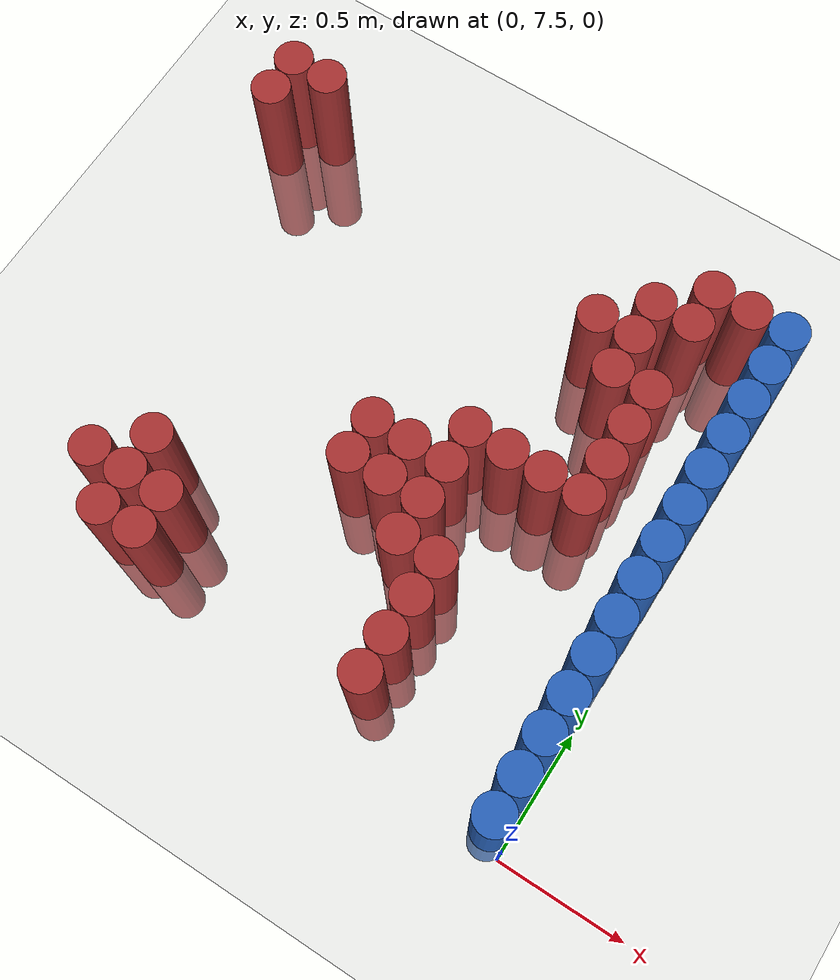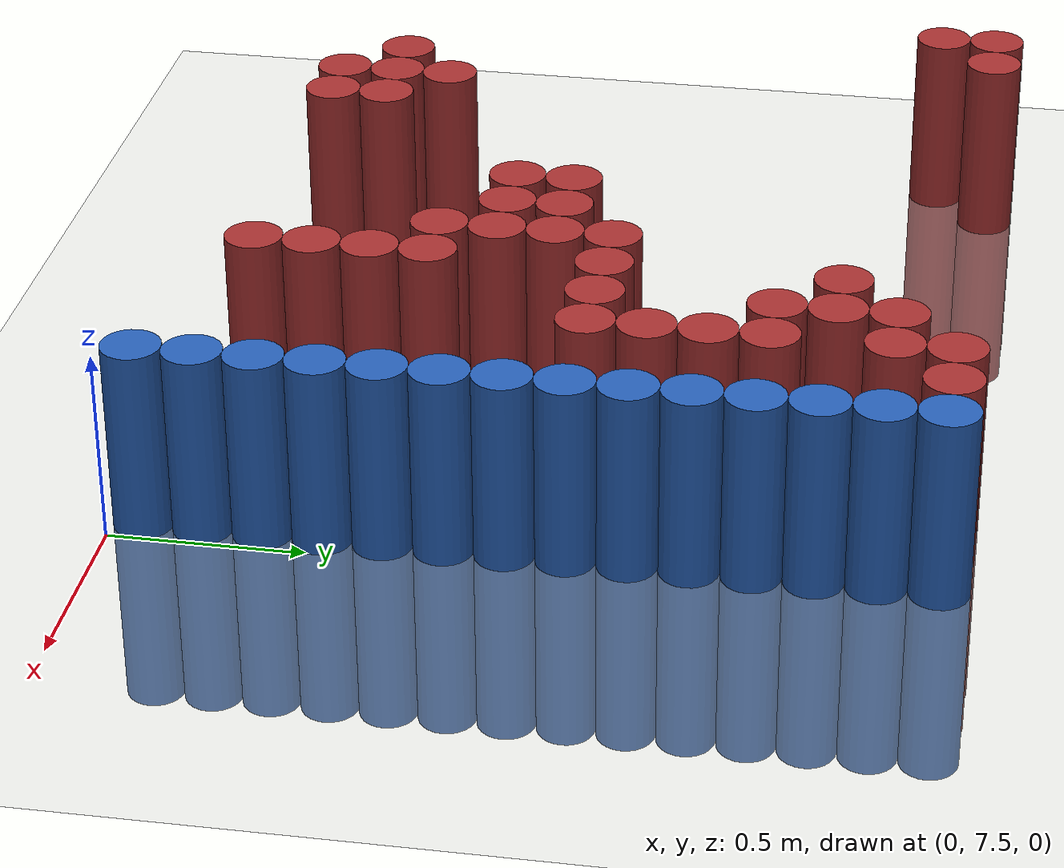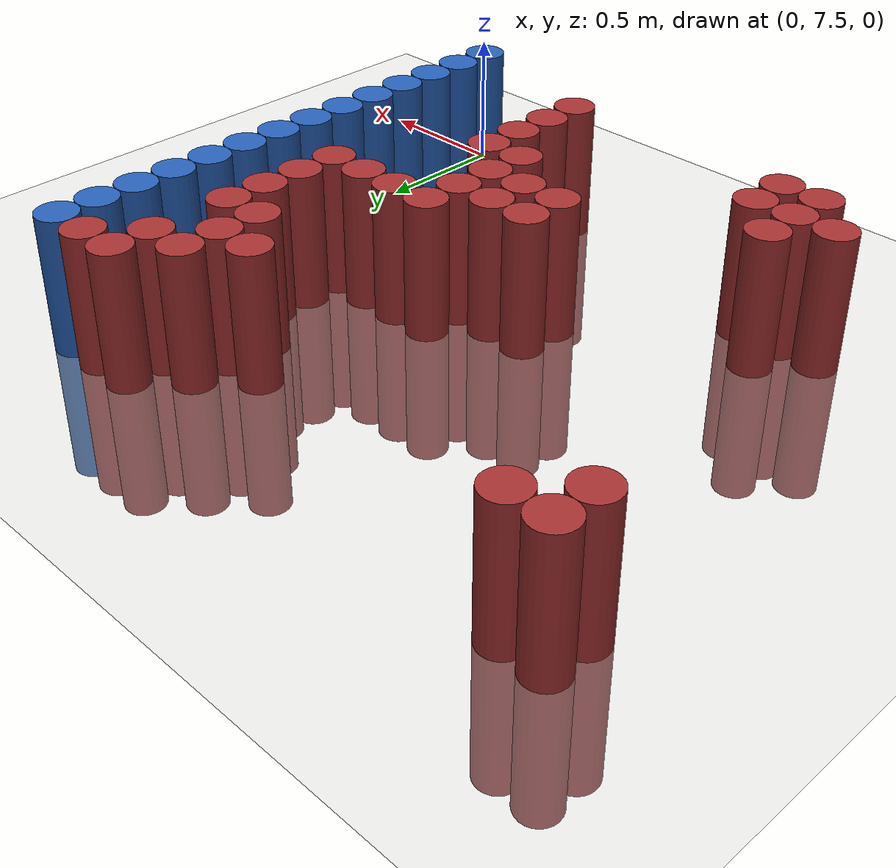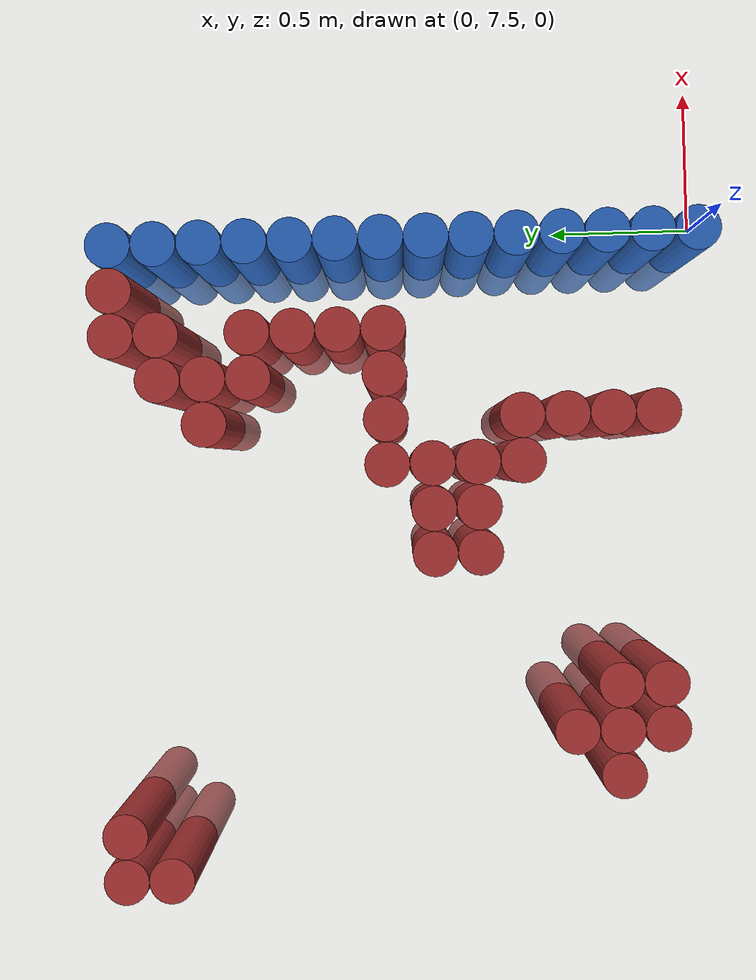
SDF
<sdf version="1.6">
 <world name="default">
  <model name="ground_plane">
   <static>1</static>
   <link name="link">
    <collision name="collision">
     <geometry><plane><normal>0 0 1</normal><size>100 100</size></plane></geometry>
     <surface><friction><ode><mu>100</mu><mu2>50</mu2></ode></friction></surface>
    </collision>
    <visual name="visual">
     <cast_shadows>0</cast_shadows>
     <geometry><plane><normal>0 0 1</normal><size>100 100</size></plane></geometry>
     <material>
      <script><uri>file://media/materials/scripts/gazebo.material</uri><name>Gazebo/Grey</name></script>
     </material>
    </visual>
   </link>
  </model>
  <model name="unit_cylinder_174">
   <static>1</static>
   <pose>-2.175000 9.375000 0.000000 0.000000 0.000000 0.000000</pose>
   <link name="link">
    <inertial>
     <mass>1</mass>
     <inertia><ixx>0.145833</ixx><ixy>0</ixy><ixz>0</ixz><iyy>0.145833</iyy><iyz>0</iyz><izz>0.125</izz></inertia>
    </inertial>
    <collision name="collision">
     <geometry><cylinder><radius>0.075000</radius><length>1</length></cylinder></geometry>
    </collision>
    <visual name="visual">
     <geometry><cylinder><radius>0.075000</radius><length>1</length></cylinder></geometry>
     <material>
      <ambient>0.648000 0.192000 0.192000 1</ambient>
      <diffuse>0.648000 0.192000 0.192000 1</diffuse>
     </material>
     <material>
      <script><name>Gazebo/Grey</name><uri>file://media/materials/scripts/gazebo.material</uri></script>
     </material>
    </visual>
   </link>
  </model>
  <model name="unit_cylinder_175">
   <static>1</static>
   <pose>-2.175000 9.525000 0.000000 0.000000 0.000000 0.000000</pose>
   <link name="link">
    <inertial>
     <mass>1</mass>
     <inertia><ixx>0.145833</ixx><ixy>0</ixy><ixz>0</ixz><iyy>0.145833</iyy><iyz>0</iyz><izz>0.125</izz></inertia>
    </inertial>
    <collision name="collision">
     <geometry><cylinder><radius>0.075000</radius><length>1</length></cylinder></geometry>
    </collision>
    <visual name="visual">
     <geometry><cylinder><radius>0.075000</radius><length>1</length></cylinder></geometry>
     <material>
      <ambient>0.648000 0.192000 0.192000 1</ambient>
      <diffuse>0.648000 0.192000 0.192000 1</diffuse>
     </material>
     <material>
      <script><name>Gazebo/Grey</name><uri>file://media/materials/scripts/gazebo.material</uri></script>
     </material>
    </visual>
   </link>
  </model>
  <model name="unit_cylinder_179">
   <static>1</static>
   <pose>-2.025000 9.525000 0.000000 0.000000 0.000000 0.000000</pose>
   <link name="link">
    <inertial>
     <mass>1</mass>
     <inertia><ixx>0.145833</ixx><ixy>0</ixy><ixz>0</ixz><iyy>0.145833</iyy><iyz>0</iyz><izz>0.125</izz></inertia>
    </inertial>
    <collision name="collision">
     <geometry><cylinder><radius>0.075000</radius><length>1</length></cylinder></geometry>
    </collision>
    <visual name="visual">
     <geometry><cylinder><radius>0.075000</radius><length>1</length></cylinder></geometry>
     <material>
      <ambient>0.648000 0.192000 0.192000 1</ambient>
      <diffuse>0.648000 0.192000 0.192000 1</diffuse>
     </material>
     <material>
      <script><name>Gazebo/Grey</name><uri>file://media/materials/scripts/gazebo.material</uri></script>
     </material>
    </visual>
   </link>
  </model>
  <model name="unit_cylinder_186">
   <static>1</static>
   <pose>-1.875000 7.875000 0.000000 0.000000 0.000000 0.000000</pose>
   <link name="link">
    <inertial>
     <mass>1</mass>
     <inertia><ixx>0.145833</ixx><ixy>0</ixy><ixz>0</ixz><iyy>0.145833</iyy><iyz>0</iyz><izz>0.125</izz></inertia>
    </inertial>
    <collision name="collision">
     <geometry><cylinder><radius>0.075000</radius><length>1</length></cylinder></geometry>
    </collision>
    <visual name="visual">
     <geometry><cylinder><radius>0.075000</radius><length>1</length></cylinder></geometry>
     <material>
      <ambient>0.648000 0.192000 0.192000 1</ambient>
      <diffuse>0.648000 0.192000 0.192000 1</diffuse>
     </material>
     <material>
      <script><name>Gazebo/Grey</name><uri>file://media/materials/scripts/gazebo.material</uri></script>
     </material>
    </visual>
   </link>
  </model>
  <model name="unit_cylinder_189">
   <static>1</static>
   <pose>-1.725000 7.725000 0.000000 0.000000 0.000000 0.000000</pose>
   <link name="link">
    <inertial>
     <mass>1</mass>
     <inertia><ixx>0.145833</ixx><ixy>0</ixy><ixz>0</ixz><iyy>0.145833</iyy><iyz>0</iyz><izz>0.125</izz></inertia>
    </inertial>
    <collision name="collision">
     <geometry><cylinder><radius>0.075000</radius><length>1</length></cylinder></geometry>
    </collision>
    <visual name="visual">
     <geometry><cylinder><radius>0.075000</radius><length>1</length></cylinder></geometry>
     <material>
      <ambient>0.648000 0.192000 0.192000 1</ambient>
      <diffuse>0.648000 0.192000 0.192000 1</diffuse>
     </material>
     <material>
      <script><name>Gazebo/Grey</name><uri>file://media/materials/scripts/gazebo.material</uri></script>
     </material>
    </visual>
   </link>
  </model>
  <model name="unit_cylinder_190">
   <static>1</static>
   <pose>-1.725000 7.875000 0.000000 0.000000 0.000000 0.000000</pose>
   <link name="link">
    <inertial>
     <mass>1</mass>
     <inertia><ixx>0.145833</ixx><ixy>0</ixy><ixz>0</ixz><iyy>0.145833</iyy><iyz>0</iyz><izz>0.125</izz></inertia>
    </inertial>
    <collision name="collision">
     <geometry><cylinder><radius>0.075000</radius><length>1</length></cylinder></geometry>
    </collision>
    <visual name="visual">
     <geometry><cylinder><radius>0.075000</radius><length>1</length></cylinder></geometry>
     <material>
      <ambient>0.648000 0.192000 0.192000 1</ambient>
      <diffuse>0.648000 0.192000 0.192000 1</diffuse>
     </material>
     <material>
      <script><name>Gazebo/Grey</name><uri>file://media/materials/scripts/gazebo.material</uri></script>
     </material>
    </visual>
   </link>
  </model>
  <model name="unit_cylinder_191">
   <static>1</static>
   <pose>-1.725000 8.025000 0.000000 0.000000 0.000000 0.000000</pose>
   <link name="link">
    <inertial>
     <mass>1</mass>
     <inertia><ixx>0.145833</ixx><ixy>0</ixy><ixz>0</ixz><iyy>0.145833</iyy><iyz>0</iyz><izz>0.125</izz></inertia>
    </inertial>
    <collision name="collision">
     <geometry><cylinder><radius>0.075000</radius><length>1</length></cylinder></geometry>
    </collision>
    <visual name="visual">
     <geometry><cylinder><radius>0.075000</radius><length>1</length></cylinder></geometry>
     <material>
      <ambient>0.648000 0.192000 0.192000 1</ambient>
      <diffuse>0.648000 0.192000 0.192000 1</diffuse>
     </material>
     <material>
      <script><name>Gazebo/Grey</name><uri>file://media/materials/scripts/gazebo.material</uri></script>
     </material>
    </visual>
   </link>
  </model>
  <model name="unit_cylinder_195">
   <static>1</static>
   <pose>-1.575000 7.725000 0.000000 0.000000 0.000000 0.000000</pose>
   <link name="link">
    <inertial>
     <mass>1</mass>
     <inertia><ixx>0.145833</ixx><ixy>0</ixy><ixz>0</ixz><iyy>0.145833</iyy><iyz>0</iyz><izz>0.125</izz></inertia>
    </inertial>
    <collision name="collision">
     <geometry><cylinder><radius>0.075000</radius><length>1</length></cylinder></geometry>
    </collision>
    <visual name="visual">
     <geometry><cylinder><radius>0.075000</radius><length>1</length></cylinder></geometry>
     <material>
      <ambient>0.648000 0.192000 0.192000 1</ambient>
      <diffuse>0.648000 0.192000 0.192000 1</diffuse>
     </material>
     <material>
      <script><name>Gazebo/Grey</name><uri>file://media/materials/scripts/gazebo.material</uri></script>
     </material>
    </visual>
   </link>
  </model>
  <model name="unit_cylinder_196">
   <static>1</static>
   <pose>-1.575000 7.875000 0.000000 0.000000 0.000000 0.000000</pose>
   <link name="link">
    <inertial>
     <mass>1</mass>
     <inertia><ixx>0.145833</ixx><ixy>0</ixy><ixz>0</ixz><iyy>0.145833</iyy><iyz>0</iyz><izz>0.125</izz></inertia>
    </inertial>
    <collision name="collision">
     <geometry><cylinder><radius>0.075000</radius><length>1</length></cylinder></geometry>
    </collision>
    <visual name="visual">
     <geometry><cylinder><radius>0.075000</radius><length>1</length></cylinder></geometry>
     <material>
      <ambient>0.648000 0.192000 0.192000 1</ambient>
      <diffuse>0.648000 0.192000 0.192000 1</diffuse>
     </material>
     <material>
      <script><name>Gazebo/Grey</name><uri>file://media/materials/scripts/gazebo.material</uri></script>
     </material>
    </visual>
   </link>
  </model>
  <model name="unit_cylinder_203">
   <static>1</static>
   <pose>-1.125000 8.325000 0.000000 0.000000 0.000000 0.000000</pose>
   <link name="link">
    <inertial>
     <mass>1</mass>
     <inertia><ixx>0.145833</ixx><ixy>0</ixy><ixz>0</ixz><iyy>0.145833</iyy><iyz>0</iyz><izz>0.125</izz></inertia>
    </inertial>
    <collision name="collision">
     <geometry><cylinder><radius>0.075000</radius><length>1</length></cylinder></geometry>
    </collision>
    <visual name="visual">
     <geometry><cylinder><radius>0.075000</radius><length>1</length></cylinder></geometry>
     <material>
      <ambient>0.648000 0.192000 0.192000 1</ambient>
      <diffuse>0.648000 0.192000 0.192000 1</diffuse>
     </material>
     <material>
      <script><name>Gazebo/Grey</name><uri>file://media/materials/scripts/gazebo.material</uri></script>
     </material>
    </visual>
   </link>
  </model>
  <model name="unit_cylinder_204">
   <static>1</static>
   <pose>-1.125000 8.475000 0.000000 0.000000 0.000000 0.000000</pose>
   <link name="link">
    <inertial>
     <mass>1</mass>
     <inertia><ixx>0.145833</ixx><ixy>0</ixy><ixz>0</ixz><iyy>0.145833</iyy><iyz>0</iyz><izz>0.125</izz></inertia>
    </inertial>
    <collision name="collision">
     <geometry><cylinder><radius>0.075000</radius><length>1</length></cylinder></geometry>
    </collision>
    <visual name="visual">
     <geometry><cylinder><radius>0.075000</radius><length>1</length></cylinder></geometry>
     <material>
      <ambient>0.648000 0.192000 0.192000 1</ambient>
      <diffuse>0.648000 0.192000 0.192000 1</diffuse>
     </material>
     <material>
      <script><name>Gazebo/Grey</name><uri>file://media/materials/scripts/gazebo.material</uri></script>
     </material>
    </visual>
   </link>
  </model>
  <model name="unit_cylinder_210">
   <static>1</static>
   <pose>-0.975000 8.325000 0.000000 0.000000 0.000000 0.000000</pose>
   <link name="link">
    <inertial>
     <mass>1</mass>
     <inertia><ixx>0.145833</ixx><ixy>0</ixy><ixz>0</ixz><iyy>0.145833</iyy><iyz>0</iyz><izz>0.125</izz></inertia>
    </inertial>
    <collision name="collision">
     <geometry><cylinder><radius>0.075000</radius><length>1</length></cylinder></geometry>
    </collision>
    <visual name="visual">
     <geometry><cylinder><radius>0.075000</radius><length>1</length></cylinder></geometry>
     <material>
      <ambient>0.648000 0.192000 0.192000 1</ambient>
      <diffuse>0.648000 0.192000 0.192000 1</diffuse>
     </material>
     <material>
      <script><name>Gazebo/Grey</name><uri>file://media/materials/scripts/gazebo.material</uri></script>
     </material>
    </visual>
   </link>
  </model>
  <model name="unit_cylinder_211">
   <static>1</static>
   <pose>-0.975000 8.475000 0.000000 0.000000 0.000000 0.000000</pose>
   <link name="link">
    <inertial>
     <mass>1</mass>
     <inertia><ixx>0.145833</ixx><ixy>0</ixy><ixz>0</ixz><iyy>0.145833</iyy><iyz>0</iyz><izz>0.125</izz></inertia>
    </inertial>
    <collision name="collision">
     <geometry><cylinder><radius>0.075000</radius><length>1</length></cylinder></geometry>
    </collision>
    <visual name="visual">
     <geometry><cylinder><radius>0.075000</radius><length>1</length></cylinder></geometry>
     <material>
      <ambient>0.648000 0.192000 0.192000 1</ambient>
      <diffuse>0.648000 0.192000 0.192000 1</diffuse>
     </material>
     <material>
      <script><name>Gazebo/Grey</name><uri>file://media/materials/scripts/gazebo.material</uri></script>
     </material>
    </visual>
   </link>
  </model>
  <model name="unit_cylinder_220">
   <static>1</static>
   <pose>-0.825000 8.175000 0.000000 0.000000 0.000000 0.000000</pose>
   <link name="link">
    <inertial>
     <mass>1</mass>
     <inertia><ixx>0.145833</ixx><ixy>0</ixy><ixz>0</ixz><iyy>0.145833</iyy><iyz>0</iyz><izz>0.125</izz></inertia>
    </inertial>
    <collision name="collision">
     <geometry><cylinder><radius>0.075000</radius><length>1</length></cylinder></geometry>
    </collision>
    <visual name="visual">
     <geometry><cylinder><radius>0.075000</radius><length>1</length></cylinder></geometry>
     <material>
      <ambient>0.648000 0.192000 0.192000 1</ambient>
      <diffuse>0.648000 0.192000 0.192000 1</diffuse>
     </material>
     <material>
      <script><name>Gazebo/Grey</name><uri>file://media/materials/scripts/gazebo.material</uri></script>
     </material>
    </visual>
   </link>
  </model>
  <model name="unit_cylinder_221">
   <static>1</static>
   <pose>-0.825000 8.325000 0.000000 0.000000 0.000000 0.000000</pose>
   <link name="link">
    <inertial>
     <mass>1</mass>
     <inertia><ixx>0.145833</ixx><ixy>0</ixy><ixz>0</ixz><iyy>0.145833</iyy><iyz>0</iyz><izz>0.125</izz></inertia>
    </inertial>
    <collision name="collision">
     <geometry><cylinder><radius>0.075000</radius><length>1</length></cylinder></geometry>
    </collision>
    <visual name="visual">
     <geometry><cylinder><radius>0.075000</radius><length>1</length></cylinder></geometry>
     <material>
      <ambient>0.648000 0.192000 0.192000 1</ambient>
      <diffuse>0.648000 0.192000 0.192000 1</diffuse>
     </material>
     <material>
      <script><name>Gazebo/Grey</name><uri>file://media/materials/scripts/gazebo.material</uri></script>
     </material>
    </visual>
   </link>
  </model>
  <model name="unit_cylinder_222">
   <static>1</static>
   <pose>-0.825000 8.475000 0.000000 0.000000 0.000000 0.000000</pose>
   <link name="link">
    <inertial>
     <mass>1</mass>
     <inertia><ixx>0.145833</ixx><ixy>0</ixy><ixz>0</ixz><iyy>0.145833</iyy><iyz>0</iyz><izz>0.125</izz></inertia>
    </inertial>
    <collision name="collision">
     <geometry><cylinder><radius>0.075000</radius><length>1</length></cylinder></geometry>
    </collision>
    <visual name="visual">
     <geometry><cylinder><radius>0.075000</radius><length>1</length></cylinder></geometry>
     <material>
      <ambient>0.648000 0.192000 0.192000 1</ambient>
      <diffuse>0.648000 0.192000 0.192000 1</diffuse>
     </material>
     <material>
      <script><name>Gazebo/Grey</name><uri>file://media/materials/scripts/gazebo.material</uri></script>
     </material>
    </visual>
   </link>
  </model>
  <model name="unit_cylinder_223">
   <static>1</static>
   <pose>-0.825000 8.625000 0.000000 0.000000 0.000000 0.000000</pose>
   <link name="link">
    <inertial>
     <mass>1</mass>
     <inertia><ixx>0.145833</ixx><ixy>0</ixy><ixz>0</ixz><iyy>0.145833</iyy><iyz>0</iyz><izz>0.125</izz></inertia>
    </inertial>
    <collision name="collision">
     <geometry><cylinder><radius>0.075000</radius><length>1</length></cylinder></geometry>
    </collision>
    <visual name="visual">
     <geometry><cylinder><radius>0.075000</radius><length>1</length></cylinder></geometry>
     <material>
      <ambient>0.648000 0.192000 0.192000 1</ambient>
      <diffuse>0.648000 0.192000 0.192000 1</diffuse>
     </material>
     <material>
      <script><name>Gazebo/Grey</name><uri>file://media/materials/scripts/gazebo.material</uri></script>
     </material>
    </visual>
   </link>
  </model>
  <model name="unit_cylinder_230">
   <static>1</static>
   <pose>-0.675000 7.725000 0.000000 0.000000 0.000000 0.000000</pose>
   <link name="link">
    <inertial>
     <mass>1</mass>
     <inertia><ixx>0.145833</ixx><ixy>0</ixy><ixz>0</ixz><iyy>0.145833</iyy><iyz>0</iyz><izz>0.125</izz></inertia>
    </inertial>
    <collision name="collision">
     <geometry><cylinder><radius>0.075000</radius><length>1</length></cylinder></geometry>
    </collision>
    <visual name="visual">
     <geometry><cylinder><radius>0.075000</radius><length>1</length></cylinder></geometry>
     <material>
      <ambient>0.648000 0.192000 0.192000 1</ambient>
      <diffuse>0.648000 0.192000 0.192000 1</diffuse>
     </material>
     <material>
      <script><name>Gazebo/Grey</name><uri>file://media/materials/scripts/gazebo.material</uri></script>
     </material>
    </visual>
   </link>
  </model>
  <model name="unit_cylinder_231">
   <static>1</static>
   <pose>-0.675000 7.875000 0.000000 0.000000 0.000000 0.000000</pose>
   <link name="link">
    <inertial>
     <mass>1</mass>
     <inertia><ixx>0.145833</ixx><ixy>0</ixy><ixz>0</ixz><iyy>0.145833</iyy><iyz>0</iyz><izz>0.125</izz></inertia>
    </inertial>
    <collision name="collision">
     <geometry><cylinder><radius>0.075000</radius><length>1</length></cylinder></geometry>
    </collision>
    <visual name="visual">
     <geometry><cylinder><radius>0.075000</radius><length>1</length></cylinder></geometry>
     <material>
      <ambient>0.648000 0.192000 0.192000 1</ambient>
      <diffuse>0.648000 0.192000 0.192000 1</diffuse>
     </material>
     <material>
      <script><name>Gazebo/Grey</name><uri>file://media/materials/scripts/gazebo.material</uri></script>
     </material>
    </visual>
   </link>
  </model>
  <model name="unit_cylinder_232">
   <static>1</static>
   <pose>-0.675000 8.025000 0.000000 0.000000 0.000000 0.000000</pose>
   <link name="link">
    <inertial>
     <mass>1</mass>
     <inertia><ixx>0.145833</ixx><ixy>0</ixy><ixz>0</ixz><iyy>0.145833</iyy><iyz>0</iyz><izz>0.125</izz></inertia>
    </inertial>
    <collision name="collision">
     <geometry><cylinder><radius>0.075000</radius><length>1</length></cylinder></geometry>
    </collision>
    <visual name="visual">
     <geometry><cylinder><radius>0.075000</radius><length>1</length></cylinder></geometry>
     <material>
      <ambient>0.648000 0.192000 0.192000 1</ambient>
      <diffuse>0.648000 0.192000 0.192000 1</diffuse>
     </material>
     <material>
      <script><name>Gazebo/Grey</name><uri>file://media/materials/scripts/gazebo.material</uri></script>
     </material>
    </visual>
   </link>
  </model>
  <model name="unit_cylinder_233">
   <static>1</static>
   <pose>-0.675000 8.175000 0.000000 0.000000 0.000000 0.000000</pose>
   <link name="link">
    <inertial>
     <mass>1</mass>
     <inertia><ixx>0.145833</ixx><ixy>0</ixy><ixz>0</ixz><iyy>0.145833</iyy><iyz>0</iyz><izz>0.125</izz></inertia>
    </inertial>
    <collision name="collision">
     <geometry><cylinder><radius>0.075000</radius><length>1</length></cylinder></geometry>
    </collision>
    <visual name="visual">
     <geometry><cylinder><radius>0.075000</radius><length>1</length></cylinder></geometry>
     <material>
      <ambient>0.648000 0.192000 0.192000 1</ambient>
      <diffuse>0.648000 0.192000 0.192000 1</diffuse>
     </material>
     <material>
      <script><name>Gazebo/Grey</name><uri>file://media/materials/scripts/gazebo.material</uri></script>
     </material>
    </visual>
   </link>
  </model>
  <model name="unit_cylinder_234">
   <static>1</static>
   <pose>-0.675000 8.625000 0.000000 0.000000 0.000000 0.000000</pose>
   <link name="link">
    <inertial>
     <mass>1</mass>
     <inertia><ixx>0.145833</ixx><ixy>0</ixy><ixz>0</ixz><iyy>0.145833</iyy><iyz>0</iyz><izz>0.125</izz></inertia>
    </inertial>
    <collision name="collision">
     <geometry><cylinder><radius>0.075000</radius><length>1</length></cylinder></geometry>
    </collision>
    <visual name="visual">
     <geometry><cylinder><radius>0.075000</radius><length>1</length></cylinder></geometry>
     <material>
      <ambient>0.648000 0.192000 0.192000 1</ambient>
      <diffuse>0.648000 0.192000 0.192000 1</diffuse>
     </material>
     <material>
      <script><name>Gazebo/Grey</name><uri>file://media/materials/scripts/gazebo.material</uri></script>
     </material>
    </visual>
   </link>
  </model>
  <model name="unit_cylinder_235">
   <static>1</static>
   <pose>-0.675000 9.225000 0.000000 0.000000 0.000000 0.000000</pose>
   <link name="link">
    <inertial>
     <mass>1</mass>
     <inertia><ixx>0.145833</ixx><ixy>0</ixy><ixz>0</ixz><iyy>0.145833</iyy><iyz>0</iyz><izz>0.125</izz></inertia>
    </inertial>
    <collision name="collision">
     <geometry><cylinder><radius>0.075000</radius><length>1</length></cylinder></geometry>
    </collision>
    <visual name="visual">
     <geometry><cylinder><radius>0.075000</radius><length>1</length></cylinder></geometry>
     <material>
      <ambient>0.648000 0.192000 0.192000 1</ambient>
      <diffuse>0.648000 0.192000 0.192000 1</diffuse>
     </material>
     <material>
      <script><name>Gazebo/Grey</name><uri>file://media/materials/scripts/gazebo.material</uri></script>
     </material>
    </visual>
   </link>
  </model>
  <model name="unit_cylinder_239">
   <static>1</static>
   <pose>-0.525000 8.625000 0.000000 0.000000 0.000000 0.000000</pose>
   <link name="link">
    <inertial>
     <mass>1</mass>
     <inertia><ixx>0.145833</ixx><ixy>0</ixy><ixz>0</ixz><iyy>0.145833</iyy><iyz>0</iyz><izz>0.125</izz></inertia>
    </inertial>
    <collision name="collision">
     <geometry><cylinder><radius>0.075000</radius><length>1</length></cylinder></geometry>
    </collision>
    <visual name="visual">
     <geometry><cylinder><radius>0.075000</radius><length>1</length></cylinder></geometry>
     <material>
      <ambient>0.648000 0.192000 0.192000 1</ambient>
      <diffuse>0.648000 0.192000 0.192000 1</diffuse>
     </material>
     <material>
      <script><name>Gazebo/Grey</name><uri>file://media/materials/scripts/gazebo.material</uri></script>
     </material>
    </visual>
   </link>
  </model>
  <model name="unit_cylinder_240">
   <static>1</static>
   <pose>-0.525000 9.075000 0.000000 0.000000 0.000000 0.000000</pose>
   <link name="link">
    <inertial>
     <mass>1</mass>
     <inertia><ixx>0.145833</ixx><ixy>0</ixy><ixz>0</ixz><iyy>0.145833</iyy><iyz>0</iyz><izz>0.125</izz></inertia>
    </inertial>
    <collision name="collision">
     <geometry><cylinder><radius>0.075000</radius><length>1</length></cylinder></geometry>
    </collision>
    <visual name="visual">
     <geometry><cylinder><radius>0.075000</radius><length>1</length></cylinder></geometry>
     <material>
      <ambient>0.648000 0.192000 0.192000 1</ambient>
      <diffuse>0.648000 0.192000 0.192000 1</diffuse>
     </material>
     <material>
      <script><name>Gazebo/Grey</name><uri>file://media/materials/scripts/gazebo.material</uri></script>
     </material>
    </visual>
   </link>
  </model>
  <model name="unit_cylinder_241">
   <static>1</static>
   <pose>-0.525000 9.225000 0.000000 0.000000 0.000000 0.000000</pose>
   <link name="link">
    <inertial>
     <mass>1</mass>
     <inertia><ixx>0.145833</ixx><ixy>0</ixy><ixz>0</ixz><iyy>0.145833</iyy><iyz>0</iyz><izz>0.125</izz></inertia>
    </inertial>
    <collision name="collision">
     <geometry><cylinder><radius>0.075000</radius><length>1</length></cylinder></geometry>
    </collision>
    <visual name="visual">
     <geometry><cylinder><radius>0.075000</radius><length>1</length></cylinder></geometry>
     <material>
      <ambient>0.648000 0.192000 0.192000 1</ambient>
      <diffuse>0.648000 0.192000 0.192000 1</diffuse>
     </material>
     <material>
      <script><name>Gazebo/Grey</name><uri>file://media/materials/scripts/gazebo.material</uri></script>
     </material>
    </visual>
   </link>
  </model>
  <model name="unit_cylinder_242">
   <static>1</static>
   <pose>-0.525000 9.375000 0.000000 0.000000 0.000000 0.000000</pose>
   <link name="link">
    <inertial>
     <mass>1</mass>
     <inertia><ixx>0.145833</ixx><ixy>0</ixy><ixz>0</ixz><iyy>0.145833</iyy><iyz>0</iyz><izz>0.125</izz></inertia>
    </inertial>
    <collision name="collision">
     <geometry><cylinder><radius>0.075000</radius><length>1</length></cylinder></geometry>
    </collision>
    <visual name="visual">
     <geometry><cylinder><radius>0.075000</radius><length>1</length></cylinder></geometry>
     <material>
      <ambient>0.648000 0.192000 0.192000 1</ambient>
      <diffuse>0.648000 0.192000 0.192000 1</diffuse>
     </material>
     <material>
      <script><name>Gazebo/Grey</name><uri>file://media/materials/scripts/gazebo.material</uri></script>
     </material>
    </visual>
   </link>
  </model>
  <model name="unit_cylinder_244">
   <static>1</static>
   <pose>-0.375000 8.625000 0.000000 0.000000 0.000000 0.000000</pose>
   <link name="link">
    <inertial>
     <mass>1</mass>
     <inertia><ixx>0.145833</ixx><ixy>0</ixy><ixz>0</ixz><iyy>0.145833</iyy><iyz>0</iyz><izz>0.125</izz></inertia>
    </inertial>
    <collision name="collision">
     <geometry><cylinder><radius>0.075000</radius><length>1</length></cylinder></geometry>
    </collision>
    <visual name="visual">
     <geometry><cylinder><radius>0.075000</radius><length>1</length></cylinder></geometry>
     <material>
      <ambient>0.648000 0.192000 0.192000 1</ambient>
      <diffuse>0.648000 0.192000 0.192000 1</diffuse>
     </material>
     <material>
      <script><name>Gazebo/Grey</name><uri>file://media/materials/scripts/gazebo.material</uri></script>
     </material>
    </visual>
   </link>
  </model>
  <model name="unit_cylinder_245">
   <static>1</static>
   <pose>-0.375000 8.775000 0.000000 0.000000 0.000000 0.000000</pose>
   <link name="link">
    <inertial>
     <mass>1</mass>
     <inertia><ixx>0.145833</ixx><ixy>0</ixy><ixz>0</ixz><iyy>0.145833</iyy><iyz>0</iyz><izz>0.125</izz></inertia>
    </inertial>
    <collision name="collision">
     <geometry><cylinder><radius>0.075000</radius><length>1</length></cylinder></geometry>
    </collision>
    <visual name="visual">
     <geometry><cylinder><radius>0.075000</radius><length>1</length></cylinder></geometry>
     <material>
      <ambient>0.648000 0.192000 0.192000 1</ambient>
      <diffuse>0.648000 0.192000 0.192000 1</diffuse>
     </material>
     <material>
      <script><name>Gazebo/Grey</name><uri>file://media/materials/scripts/gazebo.material</uri></script>
     </material>
    </visual>
   </link>
  </model>
  <model name="unit_cylinder_246">
   <static>1</static>
   <pose>-0.375000 8.925000 0.000000 0.000000 0.000000 0.000000</pose>
   <link name="link">
    <inertial>
     <mass>1</mass>
     <inertia><ixx>0.145833</ixx><ixy>0</ixy><ixz>0</ixz><iyy>0.145833</iyy><iyz>0</iyz><izz>0.125</izz></inertia>
    </inertial>
    <collision name="collision">
     <geometry><cylinder><radius>0.075000</radius><length>1</length></cylinder></geometry>
    </collision>
    <visual name="visual">
     <geometry><cylinder><radius>0.075000</radius><length>1</length></cylinder></geometry>
     <material>
      <ambient>0.648000 0.192000 0.192000 1</ambient>
      <diffuse>0.648000 0.192000 0.192000 1</diffuse>
     </material>
     <material>
      <script><name>Gazebo/Grey</name><uri>file://media/materials/scripts/gazebo.material</uri></script>
     </material>
    </visual>
   </link>
  </model>
  <model name="unit_cylinder_247">
   <static>1</static>
   <pose>-0.375000 9.075000 0.000000 0.000000 0.000000 0.000000</pose>
   <link name="link">
    <inertial>
     <mass>1</mass>
     <inertia><ixx>0.145833</ixx><ixy>0</ixy><ixz>0</ixz><iyy>0.145833</iyy><iyz>0</iyz><izz>0.125</izz></inertia>
    </inertial>
    <collision name="collision">
     <geometry><cylinder><radius>0.075000</radius><length>1</length></cylinder></geometry>
    </collision>
    <visual name="visual">
     <geometry><cylinder><radius>0.075000</radius><length>1</length></cylinder></geometry>
     <material>
      <ambient>0.648000 0.192000 0.192000 1</ambient>
      <diffuse>0.648000 0.192000 0.192000 1</diffuse>
     </material>
     <material>
      <script><name>Gazebo/Grey</name><uri>file://media/materials/scripts/gazebo.material</uri></script>
     </material>
    </visual>
   </link>
  </model>
  <model name="unit_cylinder_248">
   <static>1</static>
   <pose>-0.375000 9.375000 0.000000 0.000000 0.000000 0.000000</pose>
   <link name="link">
    <inertial>
     <mass>1</mass>
     <inertia><ixx>0.145833</ixx><ixy>0</ixy><ixz>0</ixz><iyy>0.145833</iyy><iyz>0</iyz><izz>0.125</izz></inertia>
    </inertial>
    <collision name="collision">
     <geometry><cylinder><radius>0.075000</radius><length>1</length></cylinder></geometry>
    </collision>
    <visual name="visual">
     <geometry><cylinder><radius>0.075000</radius><length>1</length></cylinder></geometry>
     <material>
      <ambient>0.648000 0.192000 0.192000 1</ambient>
      <diffuse>0.648000 0.192000 0.192000 1</diffuse>
     </material>
     <material>
      <script><name>Gazebo/Grey</name><uri>file://media/materials/scripts/gazebo.material</uri></script>
     </material>
    </visual>
   </link>
  </model>
  <model name="unit_cylinder_249">
   <static>1</static>
   <pose>-0.375000 9.525000 0.000000 0.000000 0.000000 0.000000</pose>
   <link name="link">
    <inertial>
     <mass>1</mass>
     <inertia><ixx>0.145833</ixx><ixy>0</ixy><ixz>0</ixz><iyy>0.145833</iyy><iyz>0</iyz><izz>0.125</izz></inertia>
    </inertial>
    <collision name="collision">
     <geometry><cylinder><radius>0.075000</radius><length>1</length></cylinder></geometry>
    </collision>
    <visual name="visual">
     <geometry><cylinder><radius>0.075000</radius><length>1</length></cylinder></geometry>
     <material>
      <ambient>0.648000 0.192000 0.192000 1</ambient>
      <diffuse>0.648000 0.192000 0.192000 1</diffuse>
     </material>
     <material>
      <script><name>Gazebo/Grey</name><uri>file://media/materials/scripts/gazebo.material</uri></script>
     </material>
    </visual>
   </link>
  </model>
  <model name="unit_cylinder_255">
   <static>1</static>
   <pose>-0.225000 9.525000 0.000000 0.000000 0.000000 0.000000</pose>
   <link name="link">
    <inertial>
     <mass>1</mass>
     <inertia><ixx>0.145833</ixx><ixy>0</ixy><ixz>0</ixz><iyy>0.145833</iyy><iyz>0</iyz><izz>0.125</izz></inertia>
    </inertial>
    <collision name="collision">
     <geometry><cylinder><radius>0.075000</radius><length>1</length></cylinder></geometry>
    </collision>
    <visual name="visual">
     <geometry><cylinder><radius>0.075000</radius><length>1</length></cylinder></geometry>
     <material>
      <ambient>0.648000 0.192000 0.192000 1</ambient>
      <diffuse>0.648000 0.192000 0.192000 1</diffuse>
     </material>
     <material>
      <script><name>Gazebo/Grey</name><uri>file://media/materials/scripts/gazebo.material</uri></script>
     </material>
    </visual>
   </link>
  </model>
  <model name="unit_cylinder_272">
   <static>1</static>
   <pose>-0.075000 7.575000 0.000000 0.000000 0.000000 0.000000</pose>
   <link name="link">
    <inertial>
     <mass>1</mass>
     <inertia><ixx>0.145833</ixx><ixy>0</ixy><ixz>0</ixz><iyy>0.145833</iyy><iyz>0</iyz><izz>0.125</izz></inertia>
    </inertial>
    <collision name="collision">
     <geometry><cylinder><radius>0.075000</radius><length>1</length></cylinder></geometry>
    </collision>
    <visual name="visual">
     <geometry><cylinder><radius>0.075000</radius><length>1</length></cylinder></geometry>
     <material>
      <ambient>0.152000 0.379000 0.720000 1</ambient>
      <diffuse>0.152000 0.379000 0.720000 1</diffuse>
     </material>
     <material>
      <script><name>Gazebo/Grey</name><uri>file://media/materials/scripts/gazebo.material</uri></script>
     </material>
    </visual>
   </link>
  </model>
  <model name="unit_cylinder_273">
   <static>1</static>
   <pose>-0.075000 7.725000 0.000000 0.000000 0.000000 0.000000</pose>
   <link name="link">
    <inertial>
     <mass>1</mass>
     <inertia><ixx>0.145833</ixx><ixy>0</ixy><ixz>0</ixz><iyy>0.145833</iyy><iyz>0</iyz><izz>0.125</izz></inertia>
    </inertial>
    <collision name="collision">
     <geometry><cylinder><radius>0.075000</radius><length>1</length></cylinder></geometry>
    </collision>
    <visual name="visual">
     <geometry><cylinder><radius>0.075000</radius><length>1</length></cylinder></geometry>
     <material>
      <ambient>0.152000 0.379000 0.720000 1</ambient>
      <diffuse>0.152000 0.379000 0.720000 1</diffuse>
     </material>
     <material>
      <script><name>Gazebo/Grey</name><uri>file://media/materials/scripts/gazebo.material</uri></script>
     </material>
    </visual>
   </link>
  </model>
  <model name="unit_cylinder_274">
   <static>1</static>
   <pose>-0.075000 7.875000 0.000000 0.000000 0.000000 0.000000</pose>
   <link name="link">
    <inertial>
     <mass>1</mass>
     <inertia><ixx>0.145833</ixx><ixy>0</ixy><ixz>0</ixz><iyy>0.145833</iyy><iyz>0</iyz><izz>0.125</izz></inertia>
    </inertial>
    <collision name="collision">
     <geometry><cylinder><radius>0.075000</radius><length>1</length></cylinder></geometry>
    </collision>
    <visual name="visual">
     <geometry><cylinder><radius>0.075000</radius><length>1</length></cylinder></geometry>
     <material>
      <ambient>0.152000 0.379000 0.720000 1</ambient>
      <diffuse>0.152000 0.379000 0.720000 1</diffuse>
     </material>
     <material>
      <script><name>Gazebo/Grey</name><uri>file://media/materials/scripts/gazebo.material</uri></script>
     </material>
    </visual>
   </link>
  </model>
  <model name="unit_cylinder_275">
   <static>1</static>
   <pose>-0.075000 8.025000 0.000000 0.000000 0.000000 0.000000</pose>
   <link name="link">
    <inertial>
     <mass>1</mass>
     <inertia><ixx>0.145833</ixx><ixy>0</ixy><ixz>0</ixz><iyy>0.145833</iyy><iyz>0</iyz><izz>0.125</izz></inertia>
    </inertial>
    <collision name="collision">
     <geometry><cylinder><radius>0.075000</radius><length>1</length></cylinder></geometry>
    </collision>
    <visual name="visual">
     <geometry><cylinder><radius>0.075000</radius><length>1</length></cylinder></geometry>
     <material>
      <ambient>0.152000 0.379000 0.720000 1</ambient>
      <diffuse>0.152000 0.379000 0.720000 1</diffuse>
     </material>
     <material>
      <script><name>Gazebo/Grey</name><uri>file://media/materials/scripts/gazebo.material</uri></script>
     </material>
    </visual>
   </link>
  </model>
  <model name="unit_cylinder_276">
   <static>1</static>
   <pose>-0.075000 8.175000 0.000000 0.000000 0.000000 0.000000</pose>
   <link name="link">
    <inertial>
     <mass>1</mass>
     <inertia><ixx>0.145833</ixx><ixy>0</ixy><ixz>0</ixz><iyy>0.145833</iyy><iyz>0</iyz><izz>0.125</izz></inertia>
    </inertial>
    <collision name="collision">
     <geometry><cylinder><radius>0.075000</radius><length>1</length></cylinder></geometry>
    </collision>
    <visual name="visual">
     <geometry><cylinder><radius>0.075000</radius><length>1</length></cylinder></geometry>
     <material>
      <ambient>0.152000 0.379000 0.720000 1</ambient>
      <diffuse>0.152000 0.379000 0.720000 1</diffuse>
     </material>
     <material>
      <script><name>Gazebo/Grey</name><uri>file://media/materials/scripts/gazebo.material</uri></script>
     </material>
    </visual>
   </link>
  </model>
  <model name="unit_cylinder_277">
   <static>1</static>
   <pose>-0.075000 8.325000 0.000000 0.000000 0.000000 0.000000</pose>
   <link name="link">
    <inertial>
     <mass>1</mass>
     <inertia><ixx>0.145833</ixx><ixy>0</ixy><ixz>0</ixz><iyy>0.145833</iyy><iyz>0</iyz><izz>0.125</izz></inertia>
    </inertial>
    <collision name="collision">
     <geometry><cylinder><radius>0.075000</radius><length>1</length></cylinder></geometry>
    </collision>
    <visual name="visual">
     <geometry><cylinder><radius>0.075000</radius><length>1</length></cylinder></geometry>
     <material>
      <ambient>0.152000 0.379000 0.720000 1</ambient>
      <diffuse>0.152000 0.379000 0.720000 1</diffuse>
     </material>
     <material>
      <script><name>Gazebo/Grey</name><uri>file://media/materials/scripts/gazebo.material</uri></script>
     </material>
    </visual>
   </link>
  </model>
  <model name="unit_cylinder_278">
   <static>1</static>
   <pose>-0.075000 8.475000 0.000000 0.000000 0.000000 0.000000</pose>
   <link name="link">
    <inertial>
     <mass>1</mass>
     <inertia><ixx>0.145833</ixx><ixy>0</ixy><ixz>0</ixz><iyy>0.145833</iyy><iyz>0</iyz><izz>0.125</izz></inertia>
    </inertial>
    <collision name="collision">
     <geometry><cylinder><radius>0.075000</radius><length>1</length></cylinder></geometry>
    </collision>
    <visual name="visual">
     <geometry><cylinder><radius>0.075000</radius><length>1</length></cylinder></geometry>
     <material>
      <ambient>0.152000 0.379000 0.720000 1</ambient>
      <diffuse>0.152000 0.379000 0.720000 1</diffuse>
     </material>
     <material>
      <script><name>Gazebo/Grey</name><uri>file://media/materials/scripts/gazebo.material</uri></script>
     </material>
    </visual>
   </link>
  </model>
  <model name="unit_cylinder_279">
   <static>1</static>
   <pose>-0.075000 8.625000 0.000000 0.000000 0.000000 0.000000</pose>
   <link name="link">
    <inertial>
     <mass>1</mass>
     <inertia><ixx>0.145833</ixx><ixy>0</ixy><ixz>0</ixz><iyy>0.145833</iyy><iyz>0</iyz><izz>0.125</izz></inertia>
    </inertial>
    <collision name="collision">
     <geometry><cylinder><radius>0.075000</radius><length>1</length></cylinder></geometry>
    </collision>
    <visual name="visual">
     <geometry><cylinder><radius>0.075000</radius><length>1</length></cylinder></geometry>
     <material>
      <ambient>0.152000 0.379000 0.720000 1</ambient>
      <diffuse>0.152000 0.379000 0.720000 1</diffuse>
     </material>
     <material>
      <script><name>Gazebo/Grey</name><uri>file://media/materials/scripts/gazebo.material</uri></script>
     </material>
    </visual>
   </link>
  </model>
  <model name="unit_cylinder_280">
   <static>1</static>
   <pose>-0.075000 8.775000 0.000000 0.000000 0.000000 0.000000</pose>
   <link name="link">
    <inertial>
     <mass>1</mass>
     <inertia><ixx>0.145833</ixx><ixy>0</ixy><ixz>0</ixz><iyy>0.145833</iyy><iyz>0</iyz><izz>0.125</izz></inertia>
    </inertial>
    <collision name="collision">
     <geometry><cylinder><radius>0.075000</radius><length>1</length></cylinder></geometry>
    </collision>
    <visual name="visual">
     <geometry><cylinder><radius>0.075000</radius><length>1</length></cylinder></geometry>
     <material>
      <ambient>0.152000 0.379000 0.720000 1</ambient>
      <diffuse>0.152000 0.379000 0.720000 1</diffuse>
     </material>
     <material>
      <script><name>Gazebo/Grey</name><uri>file://media/materials/scripts/gazebo.material</uri></script>
     </material>
    </visual>
   </link>
  </model>
  <model name="unit_cylinder_281">
   <static>1</static>
   <pose>-0.075000 8.925000 0.000000 0.000000 0.000000 0.000000</pose>
   <link name="link">
    <inertial>
     <mass>1</mass>
     <inertia><ixx>0.145833</ixx><ixy>0</ixy><ixz>0</ixz><iyy>0.145833</iyy><iyz>0</iyz><izz>0.125</izz></inertia>
    </inertial>
    <collision name="collision">
     <geometry><cylinder><radius>0.075000</radius><length>1</length></cylinder></geometry>
    </collision>
    <visual name="visual">
     <geometry><cylinder><radius>0.075000</radius><length>1</length></cylinder></geometry>
     <material>
      <ambient>0.152000 0.379000 0.720000 1</ambient>
      <diffuse>0.152000 0.379000 0.720000 1</diffuse>
     </material>
     <material>
      <script><name>Gazebo/Grey</name><uri>file://media/materials/scripts/gazebo.material</uri></script>
     </material>
    </visual>
   </link>
  </model>
  <model name="unit_cylinder_282">
   <static>1</static>
   <pose>-0.075000 9.075000 0.000000 0.000000 0.000000 0.000000</pose>
   <link name="link">
    <inertial>
     <mass>1</mass>
     <inertia><ixx>0.145833</ixx><ixy>0</ixy><ixz>0</ixz><iyy>0.145833</iyy><iyz>0</iyz><izz>0.125</izz></inertia>
    </inertial>
    <collision name="collision">
     <geometry><cylinder><radius>0.075000</radius><length>1</length></cylinder></geometry>
    </collision>
    <visual name="visual">
     <geometry><cylinder><radius>0.075000</radius><length>1</length></cylinder></geometry>
     <material>
      <ambient>0.152000 0.379000 0.720000 1</ambient>
      <diffuse>0.152000 0.379000 0.720000 1</diffuse>
     </material>
     <material>
      <script><name>Gazebo/Grey</name><uri>file://media/materials/scripts/gazebo.material</uri></script>
     </material>
    </visual>
   </link>
  </model>
  <model name="unit_cylinder_283">
   <static>1</static>
   <pose>-0.075000 9.225000 0.000000 0.000000 0.000000 0.000000</pose>
   <link name="link">
    <inertial>
     <mass>1</mass>
     <inertia><ixx>0.145833</ixx><ixy>0</ixy><ixz>0</ixz><iyy>0.145833</iyy><iyz>0</iyz><izz>0.125</izz></inertia>
    </inertial>
    <collision name="collision">
     <geometry><cylinder><radius>0.075000</radius><length>1</length></cylinder></geometry>
    </collision>
    <visual name="visual">
     <geometry><cylinder><radius>0.075000</radius><length>1</length></cylinder></geometry>
     <material>
      <ambient>0.152000 0.379000 0.720000 1</ambient>
      <diffuse>0.152000 0.379000 0.720000 1</diffuse>
     </material>
     <material>
      <script><name>Gazebo/Grey</name><uri>file://media/materials/scripts/gazebo.material</uri></script>
     </material>
    </visual>
   </link>
  </model>
  <model name="unit_cylinder_284">
   <static>1</static>
   <pose>-0.075000 9.375000 0.000000 0.000000 0.000000 0.000000</pose>
   <link name="link">
    <inertial>
     <mass>1</mass>
     <inertia><ixx>0.145833</ixx><ixy>0</ixy><ixz>0</ixz><iyy>0.145833</iyy><iyz>0</iyz><izz>0.125</izz></inertia>
    </inertial>
    <collision name="collision">
     <geometry><cylinder><radius>0.075000</radius><length>1</length></cylinder></geometry>
    </collision>
    <visual name="visual">
     <geometry><cylinder><radius>0.075000</radius><length>1</length></cylinder></geometry>
     <material>
      <ambient>0.152000 0.379000 0.720000 1</ambient>
      <diffuse>0.152000 0.379000 0.720000 1</diffuse>
     </material>
     <material>
      <script><name>Gazebo/Grey</name><uri>file://media/materials/scripts/gazebo.material</uri></script>
     </material>
    </visual>
   </link>
  </model>
  <model name="unit_cylinder_285">
   <static>1</static>
   <pose>-0.075000 9.525000 0.000000 0.000000 0.000000 0.000000</pose>
   <link name="link">
    <inertial>
     <mass>1</mass>
     <inertia><ixx>0.145833</ixx><ixy>0</ixy><ixz>0</ixz><iyy>0.145833</iyy><iyz>0</iyz><izz>0.125</izz></inertia>
    </inertial>
    <collision name="collision">
     <geometry><cylinder><radius>0.075000</radius><length>1</length></cylinder></geometry>
    </collision>
    <visual name="visual">
     <geometry><cylinder><radius>0.075000</radius><length>1</length></cylinder></geometry>
     <material>
      <ambient>0.152000 0.379000 0.720000 1</ambient>
      <diffuse>0.152000 0.379000 0.720000 1</diffuse>
     </material>
     <material>
      <script><name>Gazebo/Grey</name><uri>file://media/materials/scripts/gazebo.material</uri></script>
     </material>
    </visual>
   </link>
  </model>
 </world>
</sdf>
